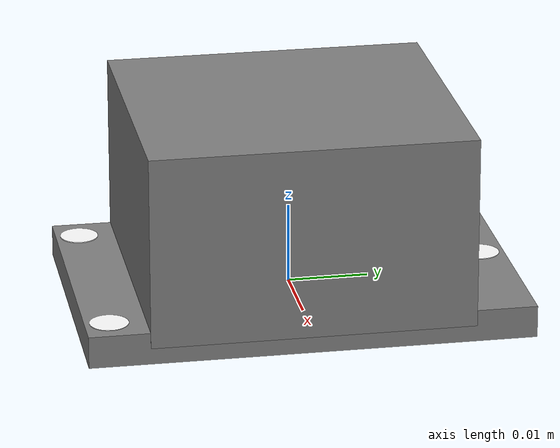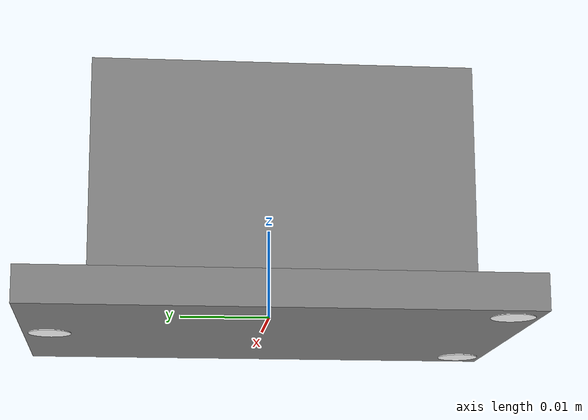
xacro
<?xml version="1.0"?>
<robot name="vtol" xmlns:xacro="http://www.ros.org/wiki/xacro">

  <xacro:property name="INCLINOMETER_BASE_X"    value="0.055" />
  <xacro:property name="INCLINOMETER_BASE_Y"    value="0.0368" />
  <xacro:property name="INCLINOMETER_BASE_Z"    value="0.004" />

  <xacro:property name="INCLINOMETER_BOX_X"     value="0.04" />
  <xacro:property name="INCLINOMETER_BOX_Y"     value="0.0368" />
  <xacro:property name="INCLINOMETER_BOX_Z"     value="0.024" />

  <xacro:property name="HOLE_RADIUS"            value="0.0024" />
  <xacro:property name="HOLE_SHIFT_X"           value="0.0245" />
  <xacro:property name="HOLE_SHIFT_Y"           value="0.01435" />

  <material name="grey">
    <color rgba="0.5 0.5 0.5 1.0"/>
  </material>
  <material name="white">
    <color rgba="1.0 1.0 1.0 1.0"/>
  </material>

  <link name="base_footprint"/>

  <link name="base_link">
    <visual>
      <origin xyz="0 0 0" rpy="3.14 0 3.14"/>
      <geometry>
        <box size="${INCLINOMETER_BASE_X} ${INCLINOMETER_BASE_Y} ${INCLINOMETER_BASE_Z}"/>
      </geometry>
      <material name="grey"/>
    </visual>
    <collision>
      <origin xyz="0 0 0" rpy="0 0 0"/>
      <geometry>
        <box size="${INCLINOMETER_BASE_X} ${INCLINOMETER_BASE_Y} ${INCLINOMETER_BASE_Z}"/>
      </geometry>
    </collision>
  </link>
  <joint name="base_joint" type="fixed">
    <parent link="base_footprint"/>
    <child link="base_link"/>
    <origin xyz="0 0 0" rpy="0 0 -1.57"/>
  </joint>

  <link name="box_link">
    <visual>
      <origin xyz="0 0 0" rpy="3.14 0 3.14"/>
      <geometry>
        <box size="${INCLINOMETER_BOX_X} ${INCLINOMETER_BOX_Y} ${INCLINOMETER_BOX_Z}"/>
      </geometry>
      <material name="grey"/>
    </visual>
    <collision>
      <origin xyz="0 0 0" rpy="0 0 0"/>
      <geometry>
        <box size="${INCLINOMETER_BOX_X} ${INCLINOMETER_BOX_Y} ${INCLINOMETER_BOX_Z}"/>
      </geometry>
    </collision>
  </link>
  <joint name="box_joint" type="fixed">
    <parent link="base_link"/>
    <child link="box_link"/>
    <origin xyz="0 0 ${INCLINOMETER_BOX_Z/2}" rpy="0 0 0"/>
  </joint>

  <link name="hole_front_left">
    <visual>
      <origin xyz="0 0 0" rpy="0 0 0"/>
      <geometry>
        <cylinder radius="${HOLE_RADIUS}" length="${INCLINOMETER_BASE_Z * 1.05}" />
      </geometry>
      <material name="white"/>
    </visual>
    <collision>
      <origin xyz="0 0 0"/>
      <geometry>
        <cylinder radius="${HOLE_RADIUS}" length="${INCLINOMETER_BASE_Z}" />
      </geometry>
    </collision>
  </link>
  <joint name="hole_front_left_connect" type="fixed">
    <parent link="base_link"/>
    <child link="hole_front_left"/>
    <origin xyz="${HOLE_SHIFT_X} ${HOLE_SHIFT_Y} 0.0" rpy="0 0 0"/>
    <axis xyz="0 0 1"/>
  </joint>

  <link name="hole_front_right">
    <visual>
      <origin xyz="0 0 0" rpy="0 0 0"/>
      <geometry>
        <cylinder radius="${HOLE_RADIUS}" length="${INCLINOMETER_BASE_Z * 1.05}" />
      </geometry>
      <material name="white"/>
    </visual>
    <collision>
      <origin xyz="0 0 0"/>
      <geometry>
        <cylinder radius="${HOLE_RADIUS}" length="${INCLINOMETER_BASE_Z}" />
      </geometry>
    </collision>
  </link>
  <joint name="hole_front_right_connect" type="fixed">
    <parent link="base_link"/>
    <child link="hole_front_right"/>
    <origin xyz="${HOLE_SHIFT_X} ${-HOLE_SHIFT_Y} 0.0" rpy="0 0 0"/>
    <axis xyz="0 0 1"/>
  </joint>

  <link name="hole_rear">
    <visual>
      <origin xyz="0 0 0" rpy="0 0 0"/>
      <geometry>
        <cylinder radius="${HOLE_RADIUS}" length="${INCLINOMETER_BASE_Z * 1.05}" />
      </geometry>
      <material name="white"/>
    </visual>
    <collision>
      <origin xyz="0 0 0"/>
      <geometry>
        <cylinder radius="${HOLE_RADIUS}" length="${INCLINOMETER_BASE_Z}" />
      </geometry>
    </collision>
  </link>
  <joint name="hole_rear_connect" type="fixed">
    <parent link="base_link"/>
    <child link="hole_rear"/>
    <origin xyz="${-HOLE_SHIFT_X} 0.0 0.0" rpy="0 0 0"/>
    <axis xyz="0 0 1"/>
  </joint>

</robot>
